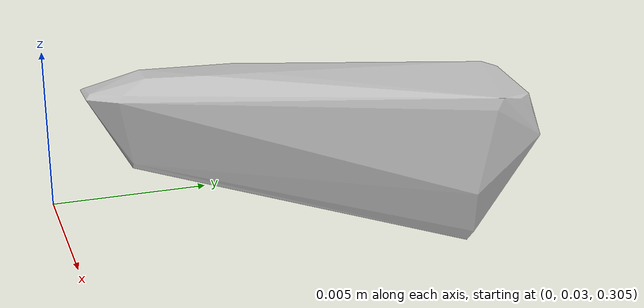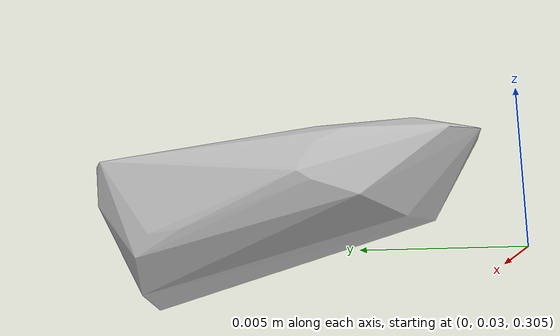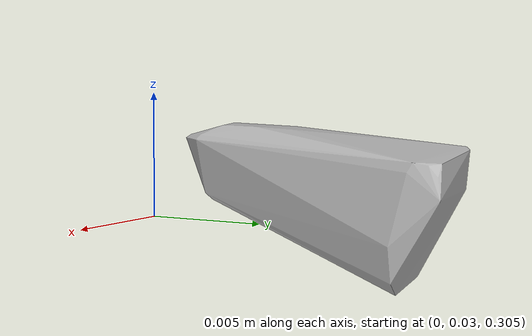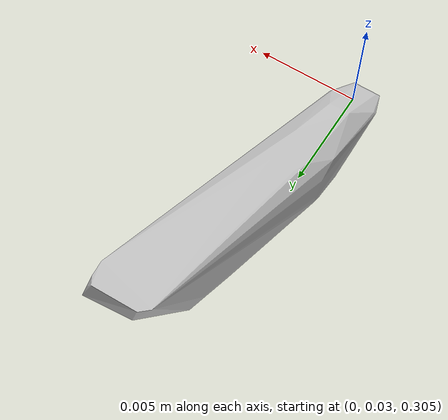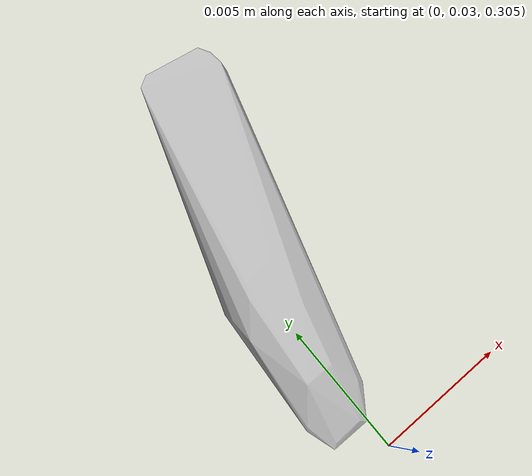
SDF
<?xml version="1.0"?>
<sdf version="1.7">
  <model name="vascular_partexport030">
    <link name="vascular_partexport030_body">
      <visual name="vascular_partexport030_visual">
        <geometry>
          <mesh>
            <uri>vascular_partexport030.obj</uri>
          </mesh>
        </geometry>
      </visual>
      <collision name="vascular_partexport030_collision">
        <geometry>
          <mesh>
            <uri>vascular_partexport030.obj</uri>
          </mesh>
        </geometry>
      </collision>
    </link>
    <frame name="vascular_partexport030_center">
      <pose relative_to="vascular_partexport030_body">0 0 0 0 0 0</pose>
    </frame>
  </model>
</sdf>
